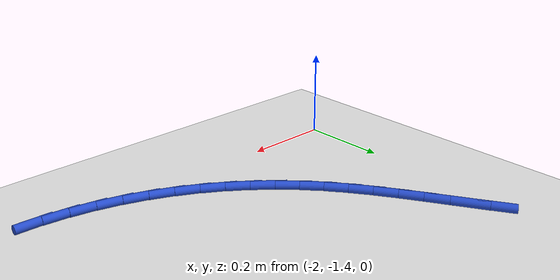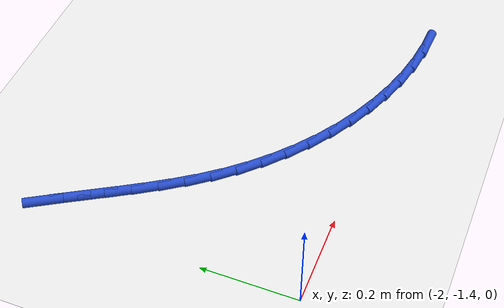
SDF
<sdf version="1.6">
 <world name="default">
  <model name="ground_plane">
   <static>1</static>
   <link name="link">
    <collision name="collision">
     <geometry><plane><normal>0 0 1</normal><size>100 100</size></plane></geometry>
     <surface><friction><ode><mu>100</mu><mu2>50</mu2></ode></friction></surface>
    </collision>
    <visual name="visual">
     <cast_shadows>0</cast_shadows>
     <geometry><plane><normal>0 0 1</normal><size>100 100</size></plane></geometry>
     <material>
      <script><uri>file://media/materials/scripts/gazebo.material</uri><name>Gazebo/WhiteGlow</name></script>
     </material>
    </visual>
   </link>
  </model>
  <model name="line">
   <link name="link_94">
    <pose>-1.9691495620004615 -0.8544482939348027 0.01 0 1.57 -1.0234073395325116</pose>
    <collision name="collision">
     <geometry><cylinder><radius>0.01</radius><length>0.08</length></cylinder></geometry>
    </collision>
    <visual name="visual">
     <material>
      <script><name>Gazebo/Blue</name><uri>file://media/materials/scripts/gazebo.material</uri></script>
     </material>
     <geometry><cylinder><radius>0.01</radius><length>0.08</length></cylinder></geometry>
    </visual>
   </link>
   <link name="link_95">
    <pose>-1.9413305792153224 -0.9000892131599862 0.01 0 1.57 -1.033934764951814</pose>
    <collision name="collision">
     <geometry><cylinder><radius>0.01</radius><length>0.08</length></cylinder></geometry>
    </collision>
    <visual name="visual">
     <material>
      <script><name>Gazebo/Blue</name><uri>file://media/materials/scripts/gazebo.material</uri></script>
     </material>
     <geometry><cylinder><radius>0.01</radius><length>0.08</length></cylinder></geometry>
    </visual>
   </link>
   <link name="link_96">
    <pose>-1.914079047453289 -0.9458769099333775 0.01 0 1.57 -1.0317959918197106</pose>
    <collision name="collision">
     <geometry><cylinder><radius>0.01</radius><length>0.08</length></cylinder></geometry>
    </collision>
    <visual name="visual">
     <material>
      <script><name>Gazebo/Blue</name><uri>file://media/materials/scripts/gazebo.material</uri></script>
     </material>
     <geometry><cylinder><radius>0.01</radius><length>0.08</length></cylinder></geometry>
    </visual>
   </link>
   <link name="link_97">
    <pose>-1.886818544359353 -0.9914575798563734 0.01 0 1.57 -1.0168667297258551</pose>
    <collision name="collision">
     <geometry><cylinder><radius>0.01</radius><length>0.08</length></cylinder></geometry>
    </collision>
    <visual name="visual">
     <material>
      <script><name>Gazebo/Blue</name><uri>file://media/materials/scripts/gazebo.material</uri></script>
     </material>
     <geometry><cylinder><radius>0.01</radius><length>0.08</length></cylinder></geometry>
    </visual>
   </link>
   <link name="link_98">
    <pose>-1.858972647578509 -1.0364774185303673 0.01 0 1.57 -0.9890315508676255</pose>
    <collision name="collision">
     <geometry><cylinder><radius>0.01</radius><length>0.08</length></cylinder></geometry>
    </collision>
    <visual name="visual">
     <material>
      <script><name>Gazebo/Blue</name><uri>file://media/materials/scripts/gazebo.material</uri></script>
     </material>
     <geometry><cylinder><radius>0.01</radius><length>0.08</length></cylinder></geometry>
    </visual>
   </link>
   <link name="link_99">
    <pose>-1.8299649347557496 -1.080582621556757 0.01 0 1.57 -0.94825876464612</pose>
    <collision name="collision">
     <geometry><cylinder><radius>0.01</radius><length>0.08</length></cylinder></geometry>
    </collision>
    <visual name="visual">
     <material>
      <script><name>Gazebo/Blue</name><uri>file://media/materials/scripts/gazebo.material</uri></script>
     </material>
     <geometry><cylinder><radius>0.01</radius><length>0.08</length></cylinder></geometry>
    </visual>
   </link>
   <link name="link_100">
    <pose>-1.7992189835360675 -1.1234193845369367 0.01 0 1.57 -0.8947400854961222</pose>
    <collision name="collision">
     <geometry><cylinder><radius>0.01</radius><length>0.08</length></cylinder></geometry>
    </collision>
    <visual name="visual">
     <material>
      <script><name>Gazebo/Blue</name><uri>file://media/materials/scripts/gazebo.material</uri></script>
     </material>
     <geometry><cylinder><radius>0.01</radius><length>0.08</length></cylinder></geometry>
    </visual>
   </link>
   <link name="link_101">
    <pose>-1.7661583715644569 -1.1646339030723007 0.01 0 1.57 -0.8299652948517491</pose>
    <collision name="collision">
     <geometry><cylinder><radius>0.01</radius><length>0.08</length></cylinder></geometry>
    </collision>
    <visual name="visual">
     <material>
      <script><name>Gazebo/Blue</name><uri>file://media/materials/scripts/gazebo.material</uri></script>
     </material>
     <geometry><cylinder><radius>0.01</radius><length>0.08</length></cylinder></geometry>
    </visual>
   </link>
   <link name="link_102">
    <pose>-1.7302624531299802 -1.2038809467729223 0.01 0 1.57 -0.7621810370453437</pose>
    <collision name="collision">
     <geometry><cylinder><radius>0.01</radius><length>0.08</length></cylinder></geometry>
    </collision>
    <visual name="visual">
     <material>
      <script><name>Gazebo/Blue</name><uri>file://media/materials/scripts/gazebo.material</uri></script>
     </material>
     <geometry><cylinder><radius>0.01</radius><length>0.08</length></cylinder></geometry>
    </visual>
   </link>
   <link name="link_103">
    <pose>-1.6914941417642977 -1.2408896181746012 0.01 0 1.57 -0.6949216253628947</pose>
    <collision name="collision">
     <geometry><cylinder><radius>0.01</radius><length>0.08</length></cylinder></geometry>
    </collision>
    <visual name="visual">
     <material>
      <script><name>Gazebo/Blue</name><uri>file://media/materials/scripts/gazebo.material</uri></script>
     </material>
     <geometry><cylinder><radius>0.01</radius><length>0.08</length></cylinder></geometry>
    </visual>
   </link>
   <link name="link_104">
    <pose>-1.6500645277356456 -1.2754271696431967 0.01 0 1.57 -0.6276455862966394</pose>
    <collision name="collision">
     <geometry><cylinder><radius>0.01</radius><length>0.08</length></cylinder></geometry>
    </collision>
    <visual name="visual">
     <material>
      <script><name>Gazebo/Blue</name><uri>file://media/materials/scripts/gazebo.material</uri></script>
     </material>
     <geometry><cylinder><radius>0.01</radius><length>0.08</length></cylinder></geometry>
    </visual>
   </link>
   <link name="link_105">
    <pose>-1.6061867284625997 -1.3072611651589532 0.01 0 1.57 -0.559806368429456</pose>
    <collision name="collision">
     <geometry><cylinder><radius>0.01</radius><length>0.08</length></cylinder></geometry>
    </collision>
    <visual name="visual">
     <material>
      <script><name>Gazebo/Blue</name><uri>file://media/materials/scripts/gazebo.material</uri></script>
     </material>
     <geometry><cylinder><radius>0.01</radius><length>0.08</length></cylinder></geometry>
    </visual>
   </link>
   <link name="link_106">
    <pose>-1.5600738613637388 -1.3361591687021128 0.01 0 1.57 -0.49088968029315505</pose>
    <collision name="collision">
     <geometry><cylinder><radius>0.01</radius><length>0.08</length></cylinder></geometry>
    </collision>
    <visual name="visual">
     <material>
      <script><name>Gazebo/Blue</name><uri>file://media/materials/scripts/gazebo.material</uri></script>
     </material>
     <geometry><cylinder><radius>0.01</radius><length>0.08</length></cylinder></geometry>
    </visual>
   </link>
   <link name="link_107">
    <pose>-1.5119390438576406 -1.3618887442529208 0.01 0 1.57 -0.42042140278947027</pose>
    <collision name="collision">
     <geometry><cylinder><radius>0.01</radius><length>0.08</length></cylinder></geometry>
    </collision>
    <visual name="visual">
     <material>
      <script><name>Gazebo/Blue</name><uri>file://media/materials/scripts/gazebo.material</uri></script>
     </material>
     <geometry><cylinder><radius>0.01</radius><length>0.08</length></cylinder></geometry>
    </visual>
   </link>
   <link name="link_108">
    <pose>-1.4619953933628829 -1.3842174557916205 0.01 0 1.57 -0.34797947177129473</pose>
    <collision name="collision">
     <geometry><cylinder><radius>0.01</radius><length>0.08</length></cylinder></geometry>
    </collision>
    <visual name="visual">
     <material>
      <script><name>Gazebo/Blue</name><uri>file://media/materials/scripts/gazebo.material</uri></script>
     </material>
     <geometry><cylinder><radius>0.01</radius><length>0.08</length></cylinder></geometry>
    </visual>
   </link>
   <link name="link_109">
    <pose>-1.4104560272980449 -1.402912867298455 0.01 0 1.57 -0.27321064125966305</pose>
    <collision name="collision">
     <geometry><cylinder><radius>0.01</radius><length>0.08</length></cylinder></geometry>
    </collision>
    <visual name="visual">
     <material>
      <script><name>Gazebo/Blue</name><uri>file://media/materials/scripts/gazebo.material</uri></script>
     </material>
     <geometry><cylinder><radius>0.01</radius><length>0.08</length></cylinder></geometry>
    </visual>
   </link>
   <link name="link_110">
    <pose>-1.3575340630817032 -1.417742542753669 0.01 0 1.57 -0.1966056009401538</pose>
    <collision name="collision">
     <geometry><cylinder><radius>0.01</radius><length>0.08</length></cylinder></geometry>
    </collision>
    <visual name="visual">
     <material>
      <script><name>Gazebo/Blue</name><uri>file://media/materials/scripts/gazebo.material</uri></script>
     </material>
     <geometry><cylinder><radius>0.01</radius><length>0.08</length></cylinder></geometry>
    </visual>
   </link>
   <link name="link_111">
    <pose>-1.3034826419700658 -1.4285084276437323 0.01 0 1.57 -0.12091782774287793</pose>
    <collision name="collision">
     <geometry><cylinder><radius>0.01</radius><length>0.08</length></cylinder></geometry>
    </collision>
    <visual name="visual">
     <material>
      <script><name>Gazebo/Blue</name><uri>file://media/materials/scripts/gazebo.material</uri></script>
     </material>
     <geometry><cylinder><radius>0.01</radius><length>0.08</length></cylinder></geometry>
    </visual>
   </link>
   <link name="link_112">
    <pose>-1.2487285480928967 -1.4351616311508526 0.01 0 1.57 -0.04601950481499989</pose>
    <collision name="collision">
     <geometry><cylinder><radius>0.01</radius><length>0.08</length></cylinder></geometry>
    </collision>
    <visual name="visual">
     <material>
      <script><name>Gazebo/Blue</name><uri>file://media/materials/scripts/gazebo.material</uri></script>
     </material>
     <geometry><cylinder><radius>0.01</radius><length>0.08</length></cylinder></geometry>
    </visual>
   </link>
  </model>
 </world>
</sdf>
